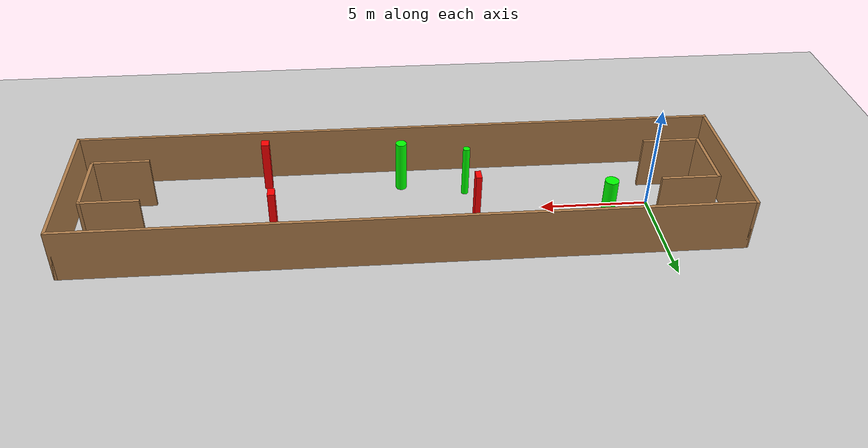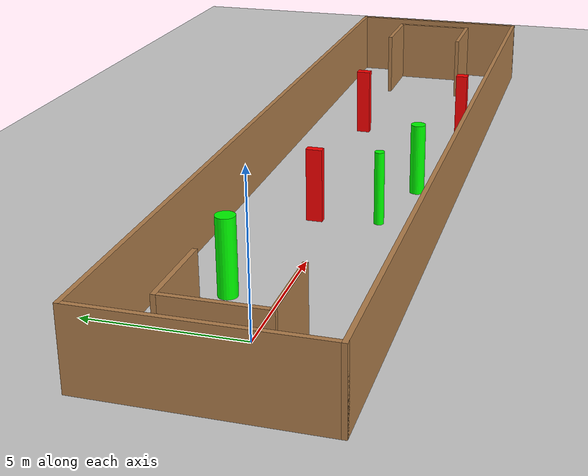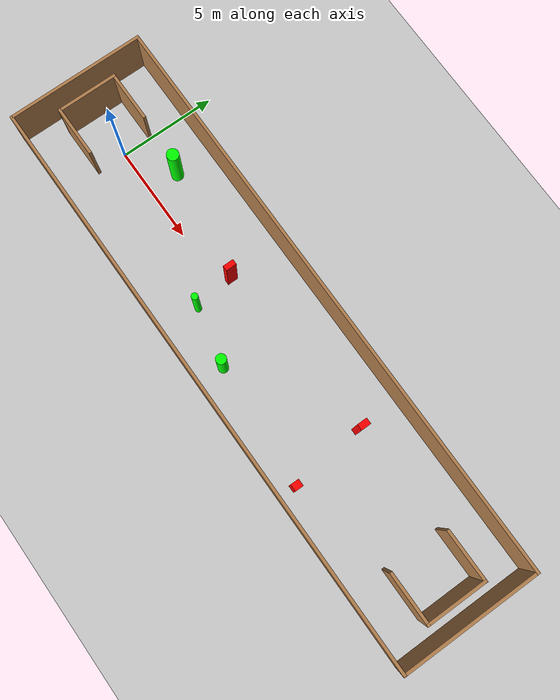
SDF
<sdf version="1.7">
 <world name="default">
  <light name="sun" type="directional">
   <pose>0 0 10 0 -0 0</pose>
   <diffuse>0.8 0.8 0.8 1</diffuse>
   <specular>0.2 0.2 0.2 1</specular>
   <attenuation>
    <range>1000</range>
    <constant>0.9</constant>
    <linear>0.01</linear>
    <quadratic>0.001</quadratic>
   </attenuation>
   <direction>-0.5 0.1 -0.9</direction>
   <spot><inner_angle>0</inner_angle><outer_angle>0</outer_angle><falloff>0</falloff></spot>
  </light>
  <model name="ground_plane">
   <static>1</static>
   <link name="link">
    <collision name="collision">
     <geometry><plane><normal>0 0 1</normal><size>100 100</size></plane></geometry>
     <surface>
      <contact><collide_bitmask>65535</collide_bitmask></contact>
      <friction><ode><mu>100</mu><mu2>50</mu2></ode></friction>
     </surface>
    </collision>
    <visual name="visual">
     <cast_shadows>0</cast_shadows>
     <geometry><plane><normal>0 0 1</normal><size>100 100</size></plane></geometry>
     <material>
      <script><uri>file://media/materials/scripts/gazebo.material</uri><name>Gazebo/Grey</name></script>
     </material>
    </visual>
   </link>
  </model>
  <gravity>0 0 -9.8</gravity>
  <magnetic_field>6e-06 2.3e-05 -4.2e-05</magnetic_field>
  <atmosphere type="adiabatic"/>
  <physics type="ode">
   <max_step_size>0.001</max_step_size>
   <real_time_factor>1</real_time_factor>
   <real_time_update_rate>1000</real_time_update_rate>
  </physics>
  <scene><ambient>0.4 0.4 0.4 1</ambient><background>0.7 0.7 0.7 1</background><shadows>1</shadows></scene>
  <spherical_coordinates>
   <surface_model>EARTH_WGS84</surface_model>
   <latitude_deg>0</latitude_deg>
   <longitude_deg>0</longitude_deg>
   <elevation>0</elevation>
   <heading_deg>0</heading_deg>
  </spherical_coordinates>
  <model name="my_base_walls">
   <link name="Wall_0">
    <collision name="Wall_0_Collision">
     <geometry><box><size>7.15 0.15 2.5</size></box></geometry>
     <pose>0 0 1.25 0 -0 0</pose>
    </collision>
    <visual name="Wall_0_Visual">
     <pose>0 0 1.25 0 -0 0</pose>
     <geometry><box><size>7.15 0.15 2.5</size></box></geometry>
     <material>
      <script><uri>file://media/materials/scripts/gazebo.material</uri><name>Gazebo/Wood</name></script>
      <ambient>1 1 1 1</ambient>
     </material>
     <meta><layer>0</layer></meta>
    </visual>
    <pose>-15 0 0 0 -0 1.5708</pose>
   </link>
   <link name="Wall_10">
    <collision name="Wall_10_Collision">
     <geometry><box><size>2.65 0.15 2.5</size></box></geometry>
     <pose>0 0 1.25 0 -0 0</pose>
    </collision>
    <visual name="Wall_10_Visual">
     <pose>0 0 1.25 0 -0 0</pose>
     <geometry><box><size>2.65 0.15 2.5</size></box></geometry>
     <material>
      <script><uri>file://media/materials/scripts/gazebo.material</uri><name>Gazebo/Wood</name></script>
      <ambient>1 1 1 1</ambient>
     </material>
     <meta><layer>0</layer></meta>
    </visual>
    <pose>-12.75 -1.5 0 0 -0 0</pose>
   </link>
   <link name="Wall_12">
    <collision name="Wall_12_Collision">
     <geometry><box><size>2.65 0.15 2.5</size></box></geometry>
     <pose>0 0 1.25 0 -0 0</pose>
    </collision>
    <visual name="Wall_12_Visual">
     <pose>0 0 1.25 0 -0 0</pose>
     <geometry><box><size>2.65 0.15 2.5</size></box></geometry>
     <material>
      <script><uri>file://media/materials/scripts/gazebo.material</uri><name>Gazebo/Wood</name></script>
      <ambient>1 1 1 1</ambient>
     </material>
     <meta><layer>0</layer></meta>
    </visual>
    <pose>-12.75 1.5 0 0 -0 0</pose>
   </link>
   <link name="Wall_14">
    <collision name="Wall_14_Collision">
     <geometry><box><size>3.15 0.15 2.5</size></box></geometry>
     <pose>0 0 1.25 0 -0 0</pose>
    </collision>
    <visual name="Wall_14_Visual">
     <pose>0 0 1.25 0 -0 0</pose>
     <geometry><box><size>3.15 0.15 2.5</size></box></geometry>
     <material>
      <script><uri>file://media/materials/scripts/gazebo.material</uri><name>Gazebo/Wood</name></script>
      <ambient>1 1 1 1</ambient>
     </material>
     <meta><layer>0</layer></meta>
    </visual>
    <pose>14 0 0 0 -0 -1.5708</pose>
   </link>
   <link name="Wall_15">
    <collision name="Wall_15_Collision">
     <geometry><box><size>2.65 0.15 2.5</size></box></geometry>
     <pose>0 0 1.25 0 -0 0</pose>
    </collision>
    <visual name="Wall_15_Visual">
     <pose>0 0 1.25 0 -0 0</pose>
     <geometry><box><size>2.65 0.15 2.5</size></box></geometry>
     <material>
      <script><uri>file://media/materials/scripts/gazebo.material</uri><name>Gazebo/Wood</name></script>
      <ambient>1 1 1 1</ambient>
     </material>
     <meta><layer>0</layer></meta>
    </visual>
    <pose>12.75 -1.5 0 0 -0 3.14159</pose>
   </link>
   <link name="Wall_17">
    <collision name="Wall_17_Collision">
     <geometry><box><size>2.65 0.15 2.5</size></box></geometry>
     <pose>0 0 1.25 0 -0 0</pose>
    </collision>
    <visual name="Wall_17_Visual">
     <pose>0 0 1.25 0 -0 0</pose>
     <geometry><box><size>2.65 0.15 2.5</size></box></geometry>
     <material>
      <script><uri>file://media/materials/scripts/gazebo.material</uri><name>Gazebo/Wood</name></script>
      <ambient>1 1 1 1</ambient>
     </material>
     <meta><layer>0</layer></meta>
    </visual>
    <pose>12.75 1.5 0 0 -0 3.14159</pose>
   </link>
   <link name="Wall_2">
    <collision name="Wall_2_Collision">
     <geometry><box><size>30.15 0.15 2.5</size></box></geometry>
     <pose>0 0 1.25 0 -0 0</pose>
    </collision>
    <visual name="Wall_2_Visual">
     <pose>0 0 1.25 0 -0 0</pose>
     <geometry><box><size>30.15 0.15 2.5</size></box></geometry>
     <material>
      <script><uri>file://media/materials/scripts/gazebo.material</uri><name>Gazebo/Wood</name></script>
      <ambient>1 1 1 1</ambient>
     </material>
     <meta><layer>0</layer></meta>
    </visual>
    <pose>-0 -3.5 0 0 -0 0</pose>
   </link>
   <link name="Wall_4">
    <collision name="Wall_4_Collision">
     <geometry><box><size>30.15 0.15 2.5</size></box></geometry>
     <pose>0 0 1.25 0 -0 0</pose>
    </collision>
    <visual name="Wall_4_Visual">
     <pose>0 0 1.25 0 -0 0</pose>
     <geometry><box><size>30.15 0.15 2.5</size></box></geometry>
     <material>
      <script><uri>file://media/materials/scripts/gazebo.material</uri><name>Gazebo/Wood</name></script>
      <ambient>1 1 1 1</ambient>
     </material>
     <meta><layer>0</layer></meta>
    </visual>
    <pose>-0 3.5 0 0 -0 0</pose>
   </link>
   <link name="Wall_6">
    <collision name="Wall_6_Collision">
     <geometry><box><size>7.15 0.15 2.5</size></box></geometry>
     <pose>0 0 1.25 0 -0 0</pose>
    </collision>
    <visual name="Wall_6_Visual">
     <pose>0 0 1.25 0 -0 0</pose>
     <geometry><box><size>7.15 0.15 2.5</size></box></geometry>
     <material>
      <script><uri>file://media/materials/scripts/gazebo.material</uri><name>Gazebo/Wood</name></script>
      <ambient>1 1 1 1</ambient>
     </material>
     <meta><layer>0</layer></meta>
    </visual>
    <pose>15 0 0 0 -0 -1.5708</pose>
   </link>
   <link name="Wall_9">
    <collision name="Wall_9_Collision">
     <geometry><box><size>3.15 0.15 2.5</size></box></geometry>
     <pose>0 0 1.25 0 -0 0</pose>
    </collision>
    <visual name="Wall_9_Visual">
     <pose>0 0 1.25 0 -0 0</pose>
     <geometry><box><size>3.15 0.15 2.5</size></box></geometry>
     <material>
      <script><uri>file://media/materials/scripts/gazebo.material</uri><name>Gazebo/Wood</name></script>
      <ambient>1 1 1 1</ambient>
     </material>
     <meta><layer>0</layer></meta>
    </visual>
    <pose>-14 0 0 0 -0 -1.5708</pose>
   </link>
   <static>1</static>
   <pose>11.5 0 0 0 -0 0</pose>
  </model>
  <model name="cylinder1">
   <static>1</static>
   <link name="link">
    <inertial>
     <mass>1</mass>
     <inertia><ixx>0.5</ixx><ixy>0</ixy><ixz>0</ixz><iyy>0.5</iyy><iyz>0</iyz><izz>1</izz></inertia>
    </inertial>
    <collision name="collision">
     <geometry><cylinder><radius>0.3068591260595894</radius><length>2.5</length></cylinder></geometry>
    </collision>
    <visual name="visual">
     <geometry><cylinder><radius>0.3068591260595894</radius><length>2.5</length></cylinder></geometry>
     <material>
      <ambient>0 1 0 1</ambient>
      <diffuse>0 1 0 1</diffuse>
      <specular>0.1 0.1 0.1 1</specular>
      <emissive>0 0 0 0</emissive>
     </material>
    </visual>
   </link>
   <pose>2.331553565906642 1.525781264456354 1.25 0 0 0</pose>
  </model>
  <model name="cylinder2">
   <static>1</static>
   <link name="link">
    <inertial>
     <mass>1</mass>
     <inertia><ixx>0.5</ixx><ixy>0</ixy><ixz>0</ixz><iyy>0.5</iyy><iyz>0</iyz><izz>1</izz></inertia>
    </inertial>
    <collision name="collision">
     <geometry><cylinder><radius>0.2542993206393835</radius><length>2.5</length></cylinder></geometry>
    </collision>
    <visual name="visual">
     <geometry><cylinder><radius>0.2542993206393835</radius><length>2.5</length></cylinder></geometry>
     <material>
      <ambient>0 1 0 1</ambient>
      <diffuse>0 1 0 1</diffuse>
      <specular>0.1 0.1 0.1 1</specular>
      <emissive>0 0 0 0</emissive>
     </material>
    </visual>
   </link>
   <pose>11.410359174205459 -2.1068280566570885 1.25 0 0 0</pose>
  </model>
  <model name="cylinder3">
   <static>1</static>
   <link name="link">
    <inertial>
     <mass>1</mass>
     <inertia><ixx>0.5</ixx><ixy>0</ixy><ixz>0</ixz><iyy>0.5</iyy><iyz>0</iyz><izz>1</izz></inertia>
    </inertial>
    <collision name="collision">
     <geometry><cylinder><radius>0.16507259242116182</radius><length>2.5</length></cylinder></geometry>
    </collision>
    <visual name="visual">
     <geometry><cylinder><radius>0.16507259242116182</radius><length>2.5</length></cylinder></geometry>
     <material>
      <ambient>0 1 0 1</ambient>
      <diffuse>0 1 0 1</diffuse>
      <specular>0.1 0.1 0.1 1</specular>
      <emissive>0 0 0 0</emissive>
     </material>
    </visual>
   </link>
   <pose>8.415278734844023 -1.4480990743585949 1.25 0 0 0</pose>
  </model>
  <model name="box1">
   <static>1</static>
   <link name="link">
    <inertial>
     <mass>1</mass>
     <inertia><ixx>0.083</ixx><ixy>0</ixy><ixz>0</ixz><iyy>0.083</iyy><iyz>0</iyz><izz>0.083</izz></inertia>
    </inertial>
    <collision name="collision">
     <geometry><box><size>0.36268222214287305 0.42284780597035565 2.5</size></box></geometry>
    </collision>
    <visual name="visual">
     <geometry><box><size>0.36268222214287305 0.42284780597035565 2.5</size></box></geometry>
     <material>
      <ambient>1 0 0 1</ambient>
      <diffuse>1 0 0 1</diffuse>
      <specular>0.1 0.1 0.1 1</specular>
      <emissive>0 0 0 0</emissive>
     </material>
    </visual>
    <sensor name="my_contact" type="contact">
     <contact><collision>box_collision</collision><topic>__default_topic__</topic></contact>
    </sensor>
   </link>
   <pose>17.747251675297974 -2.5878105572123657 1.25 0 0 0</pose>
  </model>
  <model name="box2">
   <static>1</static>
   <link name="link">
    <inertial>
     <mass>1</mass>
     <inertia><ixx>0.083</ixx><ixy>0</ixy><ixz>0</ixz><iyy>0.083</iyy><iyz>0</iyz><izz>0.083</izz></inertia>
    </inertial>
    <collision name="collision">
     <geometry><box><size>0.2659914396343376 0.5421038484909992 2.5</size></box></geometry>
    </collision>
    <visual name="visual">
     <geometry><box><size>0.2659914396343376 0.5421038484909992 2.5</size></box></geometry>
     <material>
      <ambient>1 0 0 1</ambient>
      <diffuse>1 0 0 1</diffuse>
      <specular>0.1 0.1 0.1 1</specular>
      <emissive>0 0 0 0</emissive>
     </material>
    </visual>
    <sensor name="my_contact" type="contact">
     <contact><collision>box_collision</collision><topic>__default_topic__</topic></contact>
    </sensor>
   </link>
   <pose>8.146072393996796 0.6444148391044351 1.25 0 0 0</pose>
  </model>
  <model name="box3">
   <static>1</static>
   <link name="link">
    <inertial>
     <mass>1</mass>
     <inertia><ixx>0.083</ixx><ixy>0</ixy><ixz>0</ixz><iyy>0.083</iyy><iyz>0</iyz><izz>0.083</izz></inertia>
    </inertial>
    <collision name="collision">
     <geometry><box><size>0.31488947258185546 0.5017078796050464 2.5</size></box></geometry>
    </collision>
    <visual name="visual">
     <geometry><box><size>0.31488947258185546 0.5017078796050464 2.5</size></box></geometry>
     <material>
      <ambient>1 0 0 1</ambient>
      <diffuse>1 0 0 1</diffuse>
      <specular>0.1 0.1 0.1 1</specular>
      <emissive>0 0 0 0</emissive>
     </material>
    </visual>
    <sensor name="my_contact" type="contact">
     <contact><collision>box_collision</collision><topic>__default_topic__</topic></contact>
    </sensor>
   </link>
   <pose>17.320777437111147 1.291515529691278 1.25 0 0 0</pose>
  </model>
 </world>
</sdf>
